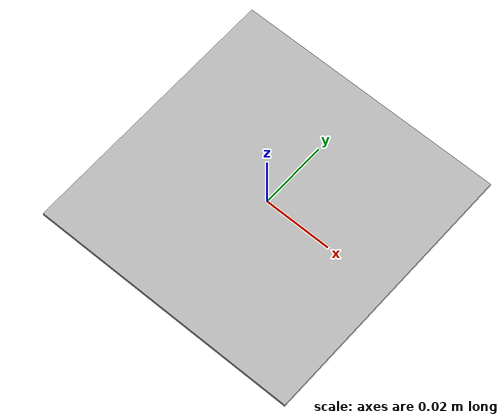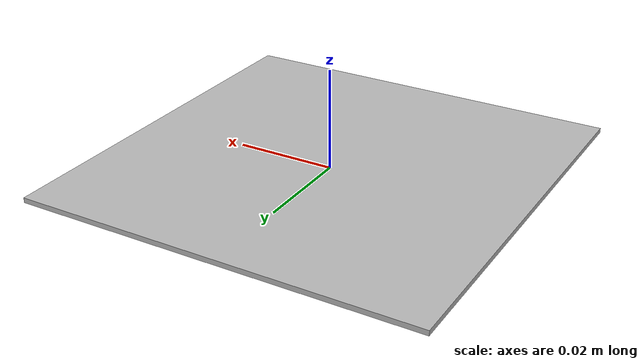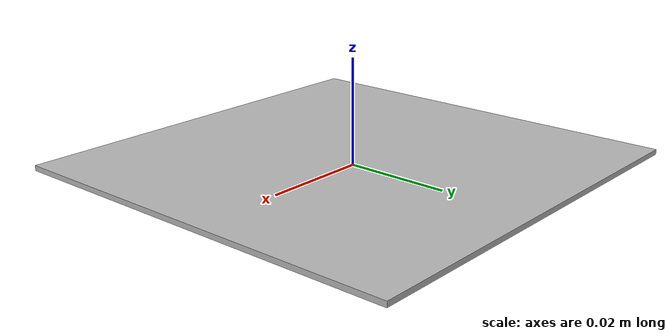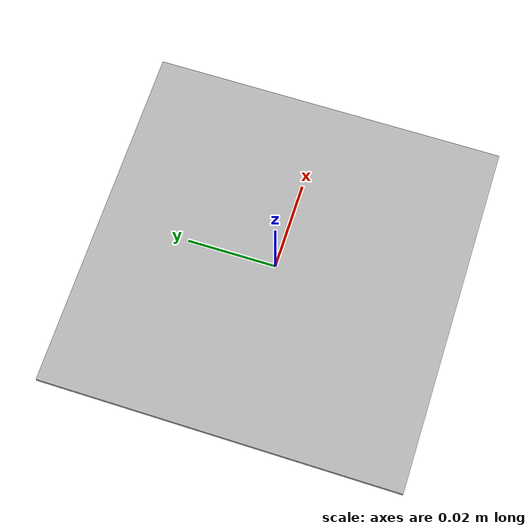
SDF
<?xml version="1.0"?>
<sdf version="1.5">
    <model name="qr_code_zone3MoroccoMall">
        <static>true</static>
        <link name="qr_code_zone3MoroccoMall_link">
            <pose>0 0 1e-3 0 0 1.5707963267948966</pose>
            <visual name="visual_qr_code_zone3MoroccoMall">
                <cast_shadows>false</cast_shadows>
                <geometry><box><size>0.08 0.08 1e-3</size></box></geometry>
                <material>
                    <script>
                        <uri>model://qr_code_zone3MoroccoMall/materials/scripts</uri>
                        <uri>model://qr_code_zone3MoroccoMall/materials/textures</uri>
                        <name>qr_code_zone3MoroccoMall/qr_code_zone3MoroccoMall</name>
                    </script>
                </material>
            </visual>
        </link>
    </model>
</sdf>
